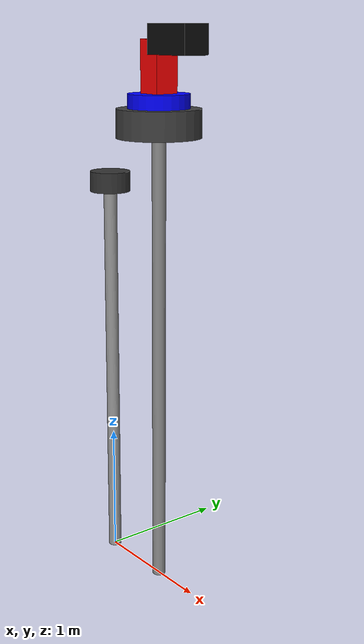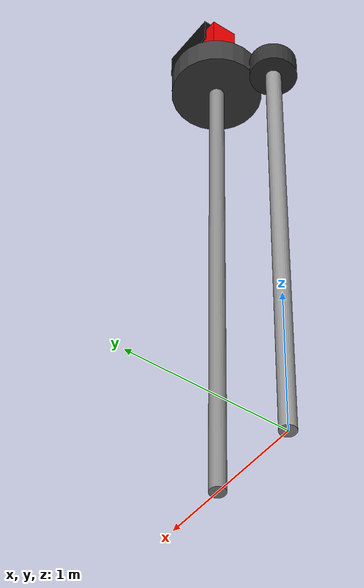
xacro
<?xml version="1.0"?>

<robot xmlns:xacro="http://www.ros.org/wiki/xacro"
       name="fixed_lidar">

  <!-- Include PTZ Camera Macro File -->
  <xacro:include filename="ptz_camera.xacro" />

  <!--
    Fixed LiDAR detection system

    Frame structure:

      base_link
          |
          | 3.0 m
          |
      fixed_lidar
  -->

  <!-- Base / pole                -->

  <link name="base_link">

    <visual>
      <origin xyz="0 0 1.5" rpy="0 0 0"/>

      <geometry>
        <cylinder radius="0.05" length="3.0"/>
      </geometry>

      <material name="pole_material">
        <color rgba="0.6 0.6 0.6 1.0"/>
      </material>
    </visual>

  </link>

  <!-- LiDAR frame               -->

  <link name="fixed_lidar">

    <visual>
      <origin xyz="0 0 0.03" rpy="0 0 0"/>

      <geometry>
        <cylinder radius="0.15" length="0.15"/>
      </geometry>

      <material name="lidar_material">
        <color rgba="0.2 0.2 0.2 1.0"/>
      </material>
    </visual>

  </link>

  <!-- Pole -> LiDAR transform   -->

  <joint name="fixed_lidar_joint" type="fixed">

    <parent link="base_link"/>
    <child link="fixed_lidar"/>

    <origin xyz="0 0 3.0" rpy="0 0 0"/>

  </joint>

  <!-- PTZ camera is on a separate pole 1.25 m beside the LiDAR pole.
       Its top is at z=3.4 m, slightly above the 3.0 m LiDAR stand. -->
  <xacro:ptz_camera parent_link="base_link">
    <origin xyz="0.6 0 3.4" rpy="0 0 0"/>
  </xacro:ptz_camera>

</robot>

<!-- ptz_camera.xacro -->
<robot xmlns:xacro="http://www.ros.org/wiki/xacro">

  <xacro:macro name="ptz_camera" params="parent_link *origin">

    <!-- Camera Base Link -->
    <link name="camera_base_link">
      <visual name="support_pole_visual">
        <origin xyz="0 0 -1.70" rpy="0 0 0"/>
        <geometry>
          <cylinder radius="0.05" length="3.40"/>
        </geometry>
        <material name="support_pole_material">
          <color rgba="0.55 0.55 0.55 1.0"/>
        </material>
      </visual>
      <visual>
        <origin xyz="0 0 0.10" rpy="0 0 0"/>
        <geometry>
          <cylinder radius="0.30" length="0.20"/>
        </geometry>
        <material name="base_material">
          <color rgba="0.25 0.25 0.25 1.0"/>
        </material>
      </visual>
    </link>

    <!-- Connect Camera Base to the LiDAR Parent Link -->
    <joint name="camera_base_joint" type="fixed">
      <parent link="${parent_link}"/>
      <child link="camera_base_link"/>
      <xacro:insert_block name="origin"/>
    </joint>

    <!-- Pan Link -->
    <link name="pan_link">
      <visual>
        <!-- Seat the pan cylinder directly on the camera base. -->
        <origin xyz="0 0 0.05" rpy="0 0 0"/>
        <geometry>
          <cylinder radius="0.22" length="0.10"/>
        </geometry>
        <material name="pan_material">
          <color rgba="0.0 0.0 1.0 1.0"/>
        </material>
      </visual>
    </link>

    <joint name="pan_joint" type="continuous">
      <parent link="camera_base_link"/>
      <child link="pan_link"/>
      <origin xyz="0 0 0.20" rpy="0 0 0"/>
      <axis xyz="0 0 1"/>
      <limit effort="10" velocity="1.0"/>
    </joint>

    <!-- Tilt Body -->
    <link name="tilt_link">
      <visual>
        <origin xyz="0 0 0.18" rpy="0 0 0"/>
        <geometry>
          <box size="0.18 0.18 0.36"/>
        </geometry>
        <material name="tilt_material">
          <color rgba="1.0 0.0 0.0 1.0"/>

        </material>
      </visual>
    </link>

    <joint name="tilt_joint" type="revolute">
      <parent link="pan_link"/>
      <child link="tilt_link"/>
      <origin xyz="0 0 0.10" rpy="0 0 0"/>
      <axis xyz="0 1 0"/>
      <limit lower="-1.0472" upper="1.0472" effort="10" velocity="1.0"/>
    </joint>

    <!-- Camera Body -->
    <link name="camera_link">
      <visual>
        <origin xyz="0.20 0 0" rpy="0 0 0"/>
        <geometry>
          <box size="0.40 0.20 0.20"/>
        </geometry>
        <material name="camera_material">
          <color rgba="0.05 0.05 0.05 1.0"/>
        </material>
      </visual>
    </link>

    <joint name="camera_joint" type="fixed">
      <parent link="tilt_link"/>
      <child link="camera_link"/>
      <origin xyz="0 0 0.36" rpy="0 0 0"/>
    </joint>

    <!-- 5. CAMERA SENSOR FRAME (Edge Center of camera_link Box)     -->

    <!-- Use explicit open & close tags for empty dummy links -->
    <link name="camera_sensor_link"></link>

    <joint name="camera_sensor_joint" type="fixed">
      <parent link="camera_link"/>
      <child link="camera_sensor_link"/>
      <origin xyz="0.40 0 0" rpy="0 0 0"/>
    </joint>

    <!-- 6. Camera Optical Frame -->
    <link name="camera_optical_frame"></link>

    <joint name="camera_optical_joint" type="fixed">
      <parent link="camera_sensor_link"/>
      <child link="camera_optical_frame"/>
      <origin xyz="0 0 0" rpy="-1.5708 0 -1.5708"/>
    </joint>

        <!-- Gazebo Sim PTZ camera sensor -->
    <gazebo reference="camera_link">
      <sensor name="ptz_camera" type="camera">
        <pose>0.40 0 0 0 0 0</pose>
        <topic>/ptz_camera</topic>
        <update_rate>5</update_rate>
        <always_on>true</always_on>
        <visualize>false</visualize>

        <camera>
          <horizontal_fov>1.0472</horizontal_fov>
          <image>
            <width>640</width>
            <height>480</height>
            <format>R8G8B8</format>
          </image>
          <clip>
            <near>0.05</near>
            <far>150.0</far>
          </clip>
        </camera>

        <gz_frame_id>camera_link</gz_frame_id>
      </sensor>
    </gazebo>

  </xacro:macro>

</robot>
